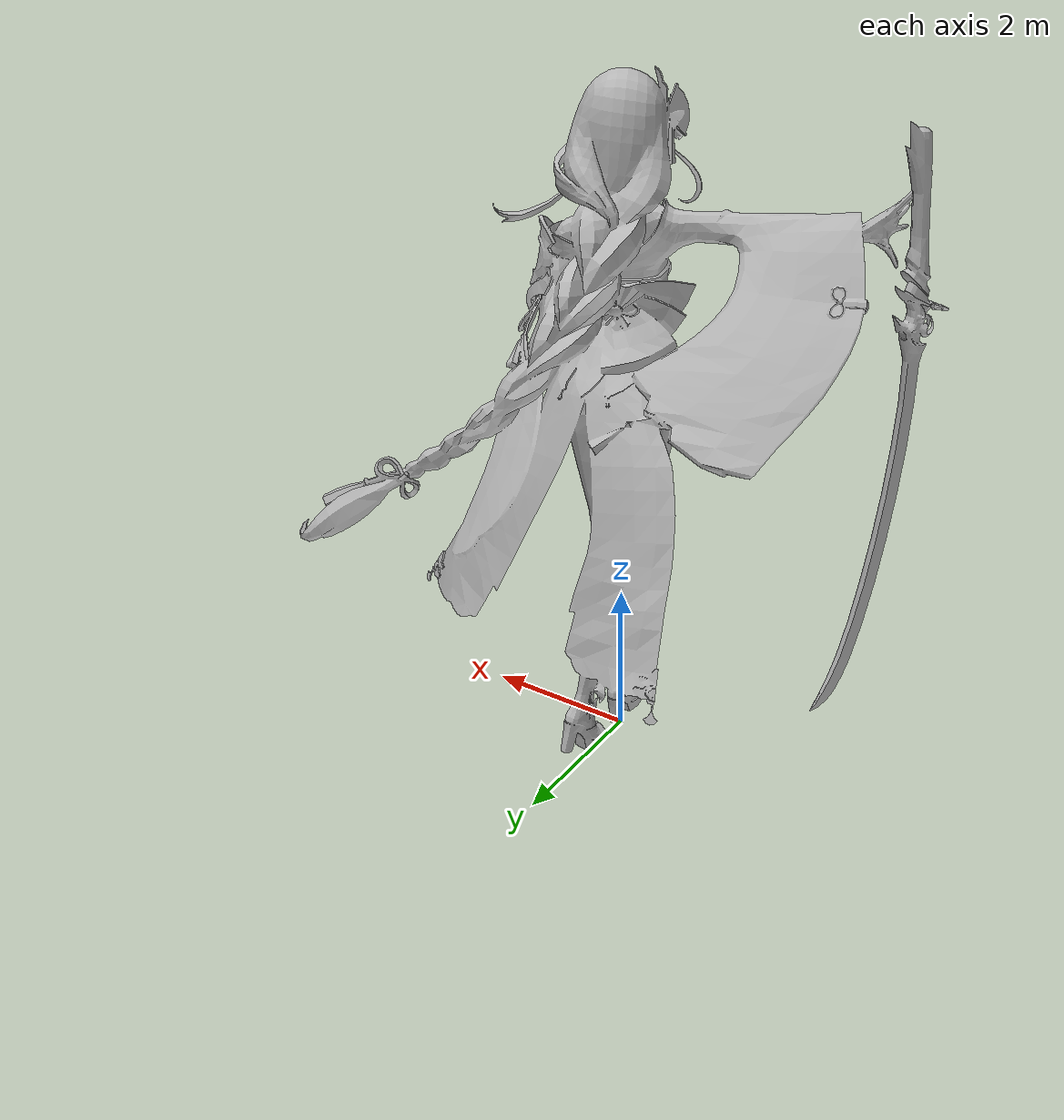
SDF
<?xml version="1.0" ?>
<sdf version="1.6">
  <model name="raiden_shogun">
    <static>true</static>
    <link name="raiden_shogun">
      <visual name="visual">
        <geometry>
          <mesh>
            <uri>meshes/untitled.dae</uri>
            <scale>0.4 0.4 0.4</scale>
          </mesh>
        </geometry>
      </visual>
      <collision name="collision_0">
        <geometry>
          <mesh>
            <uri>meshes/untitled.dae</uri>
            <scale>0.4 0.4 0.4</scale>
          </mesh>
        </geometry>
      </collision>
    </link>
  </model>
</sdf>
